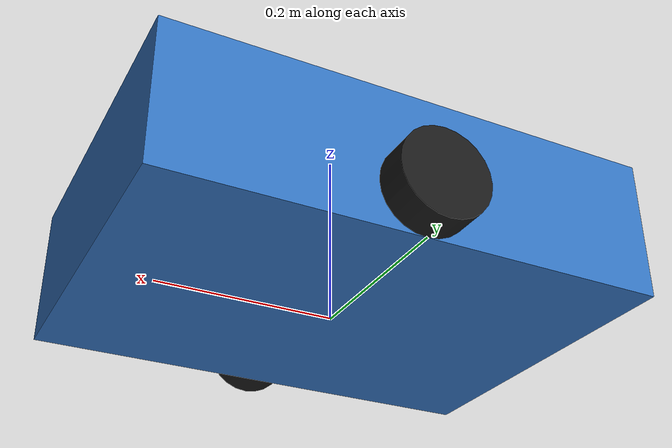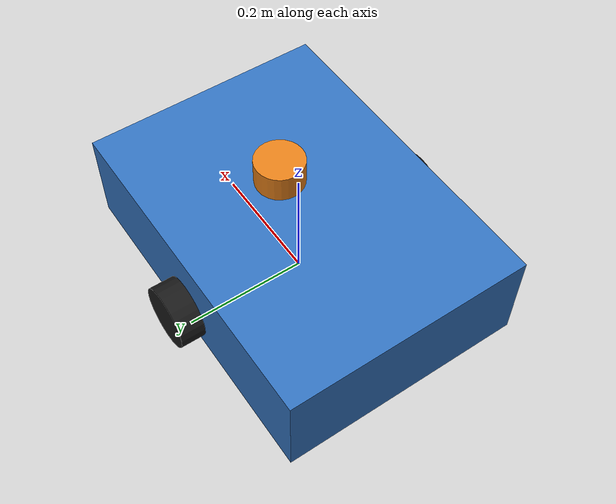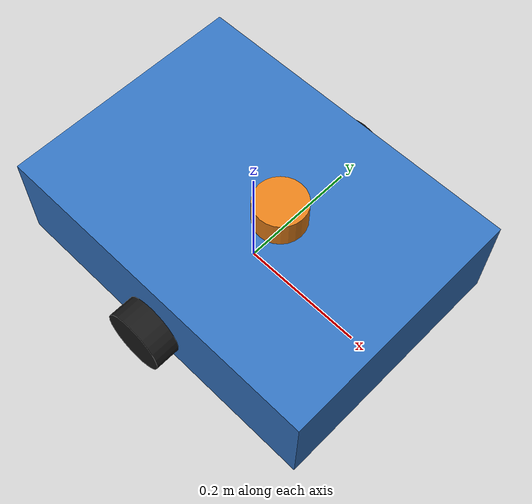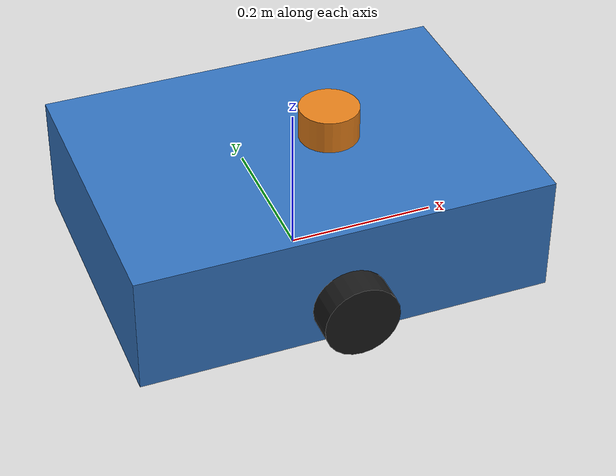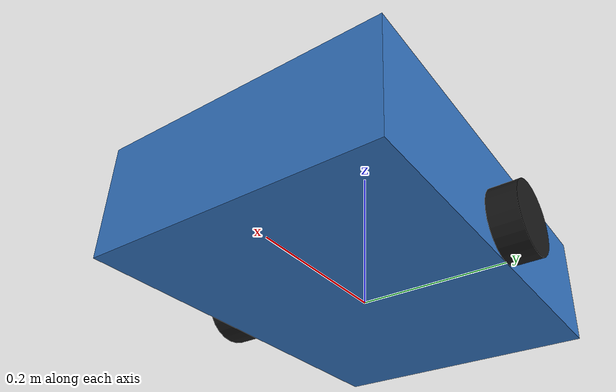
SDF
<?xml version="1.0" ?>
<sdf version="1.8">
  <model name="patrol_robot">
    <link name="base_link">
      <pose>0 0 0.08 0 0 0</pose>
      <inertial>
        <mass>8.0</mass>
        <inertia>
          <ixx>0.08</ixx>
          <ixy>0</ixy>
          <ixz>0</ixz>
          <iyy>0.12</iyy>
          <iyz>0</iyz>
          <izz>0.16</izz>
        </inertia>
      </inertial>
      <visual name="body_visual">
        <geometry>
          <box>
            <size>0.55 0.40 0.16</size>
          </box>
        </geometry>
        <material>
          <ambient>0.2 0.45 0.75 1</ambient>
          <diffuse>0.2 0.45 0.75 1</diffuse>
        </material>
      </visual>
      <collision name="body_collision">
        <geometry>
          <box>
            <size>0.55 0.40 0.16</size>
          </box>
        </geometry>
      </collision>
    </link>

    <link name="left_wheel">
      <pose>0 0.22 0.05 -1.5707 0 0</pose>
      <inertial>
        <mass>0.5</mass>
        <inertia>
          <ixx>0.001</ixx>
          <iyy>0.001</iyy>
          <izz>0.001</izz>
        </inertia>
      </inertial>
      <visual name="left_wheel_visual">
        <geometry>
          <cylinder>
            <radius>0.05</radius>
            <length>0.04</length>
          </cylinder>
        </geometry>
        <material>
          <ambient>0.1 0.1 0.1 1</ambient>
          <diffuse>0.1 0.1 0.1 1</diffuse>
        </material>
      </visual>
      <collision name="left_wheel_collision">
        <geometry>
          <cylinder>
            <radius>0.05</radius>
            <length>0.04</length>
          </cylinder>
        </geometry>
      </collision>
    </link>

    <link name="right_wheel">
      <pose>0 -0.22 0.05 -1.5707 0 0</pose>
      <inertial>
        <mass>0.5</mass>
        <inertia>
          <ixx>0.001</ixx>
          <iyy>0.001</iyy>
          <izz>0.001</izz>
        </inertia>
      </inertial>
      <visual name="right_wheel_visual">
        <geometry>
          <cylinder>
            <radius>0.05</radius>
            <length>0.04</length>
          </cylinder>
        </geometry>
        <material>
          <ambient>0.1 0.1 0.1 1</ambient>
          <diffuse>0.1 0.1 0.1 1</diffuse>
        </material>
      </visual>
      <collision name="right_wheel_collision">
        <geometry>
          <cylinder>
            <radius>0.05</radius>
            <length>0.04</length>
          </cylinder>
        </geometry>
      </collision>
    </link>

    <link name="caster">
      <pose>-0.22 0 0.03 0 0 0</pose>
      <inertial>
        <mass>0.2</mass>
        <inertia>
          <ixx>0.0001</ixx>
          <iyy>0.0001</iyy>
          <izz>0.0001</izz>
        </inertia>
      </inertial>
      <visual name="caster_visual">
        <geometry>
          <sphere>
            <radius>0.03</radius>
          </sphere>
        </geometry>
        <material>
          <ambient>0.3 0.3 0.3 1</ambient>
          <diffuse>0.3 0.3 0.3 1</diffuse>
        </material>
      </visual>
      <collision name="caster_collision">
        <geometry>
          <sphere>
            <radius>0.03</radius>
          </sphere>
        </geometry>
      </collision>
    </link>

    <link name="lidar_link">
      <pose>0.05 0 0.18 0 0 0</pose>
      <inertial>
        <mass>0.1</mass>
        <inertia>
          <ixx>0.0001</ixx>
          <iyy>0.0001</iyy>
          <izz>0.0001</izz>
        </inertia>
      </inertial>
      <visual name="lidar_visual">
        <geometry>
          <cylinder>
            <radius>0.04</radius>
            <length>0.05</length>
          </cylinder>
        </geometry>
        <material>
          <ambient>0.9 0.5 0.1 1</ambient>
          <diffuse>0.9 0.5 0.1 1</diffuse>
        </material>
      </visual>
      <sensor name="lidar" type="lidar">
        <topic>scan</topic>
        <gz_frame_id>lidar_link</gz_frame_id>
        <update_rate>20</update_rate>
        <lidar>
          <scan>
            <horizontal>
              <samples>360</samples>
              <resolution>1</resolution>
              <min_angle>-3.14159</min_angle>
              <max_angle>3.14159</max_angle>
            </horizontal>
            <vertical>
              <samples>1</samples>
              <resolution>1</resolution>
              <min_angle>0</min_angle>
              <max_angle>0</max_angle>
            </vertical>
          </scan>
          <range>
            <min>0.12</min>
            <max>8.0</max>
            <resolution>0.01</resolution>
          </range>
        </lidar>
        <visualize>true</visualize>
      </sensor>
    </link>

    <joint name="left_wheel_joint" type="revolute">
      <parent>base_link</parent>
      <child>left_wheel</child>
      <axis>
        <xyz>0 0 1</xyz>
        <limit>
          <lower>-1e308</lower>
          <upper>1e308</upper>
        </limit>
      </axis>
    </joint>

    <joint name="right_wheel_joint" type="revolute">
      <parent>base_link</parent>
      <child>right_wheel</child>
      <axis>
        <xyz>0 0 1</xyz>
        <limit>
          <lower>-1e308</lower>
          <upper>1e308</upper>
        </limit>
      </axis>
    </joint>

    <joint name="caster_joint" type="ball">
      <parent>base_link</parent>
      <child>caster</child>
    </joint>

    <joint name="lidar_joint" type="fixed">
      <parent>base_link</parent>
      <child>lidar_link</child>
    </joint>

    <plugin
      filename="gz-sim-diff-drive-system"
      name="gz::sim::systems::DiffDrive">
      <left_joint>left_wheel_joint</left_joint>
      <right_joint>right_wheel_joint</right_joint>
      <wheel_separation>0.44</wheel_separation>
      <wheel_radius>0.05</wheel_radius>
      <topic>cmd_vel</topic>
      <odom_topic>odometry</odom_topic>
      <frame_id>odom</frame_id>
      <child_frame_id>base_link</child_frame_id>
      <odom_publish_frequency>30</odom_publish_frequency>
      <max_linear_velocity>0.6</max_linear_velocity>
      <min_linear_velocity>-0.3</min_linear_velocity>
      <max_angular_velocity>1.2</max_angular_velocity>
      <min_angular_velocity>-1.2</min_angular_velocity>
    </plugin>
  </model>
</sdf>
